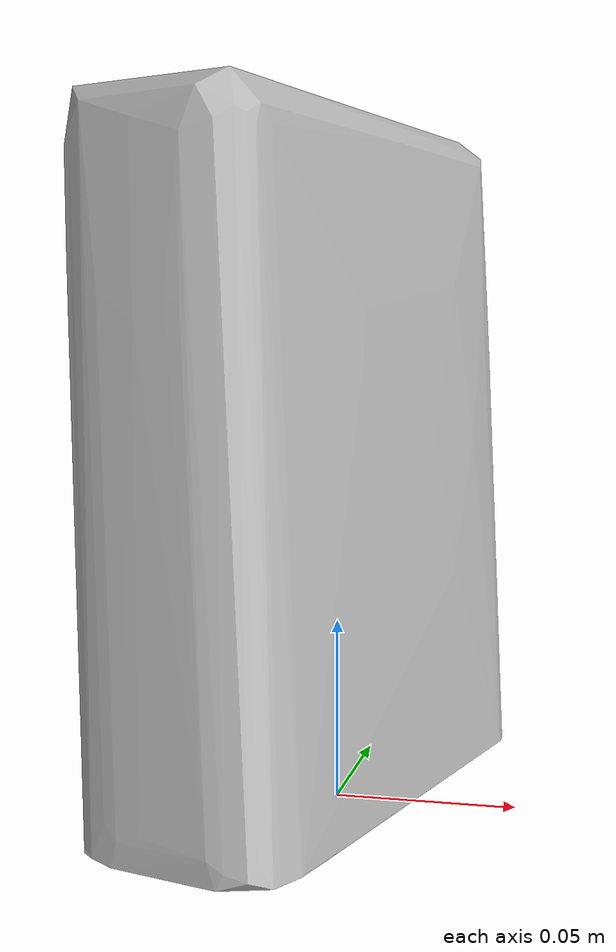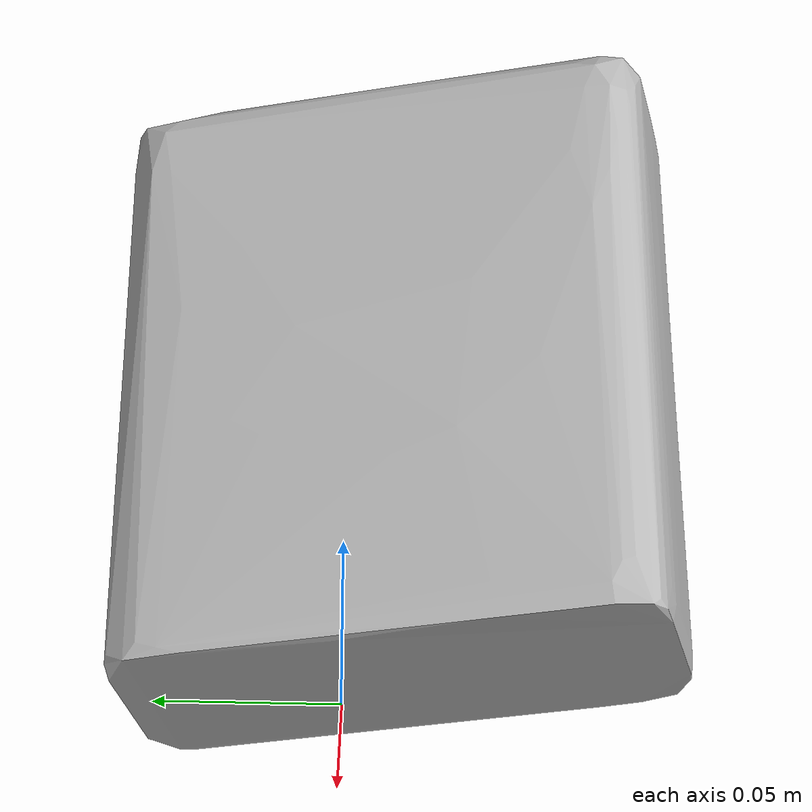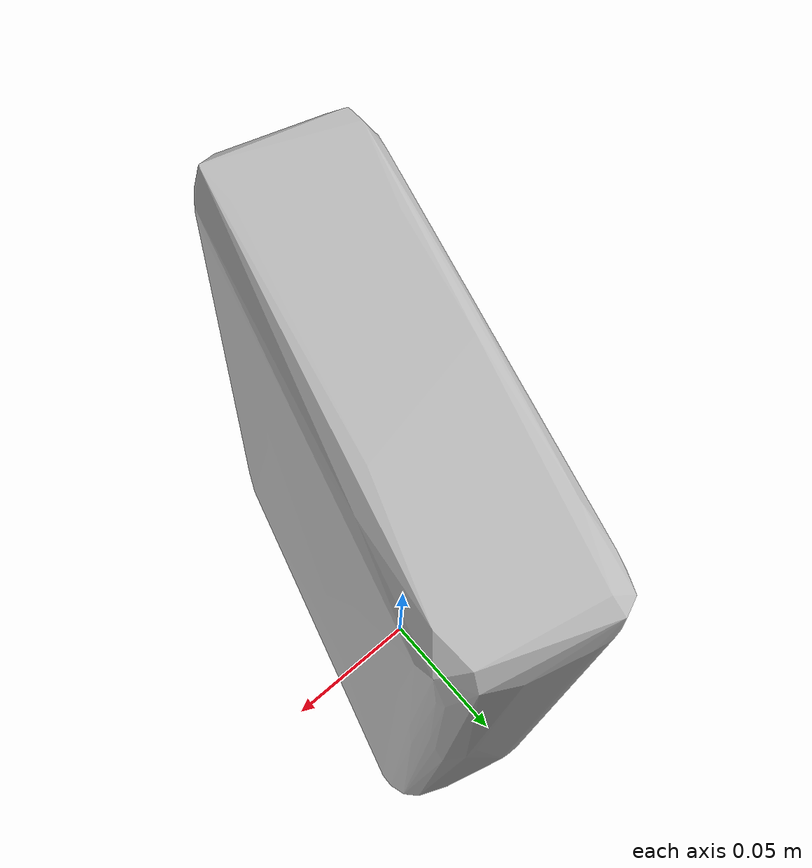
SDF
<?xml version='1.0'?>
<sdf version="1.4">
  <model name="spongebob_squarepants_fruit_snaks">
    <static>false</static>
    <link name="link">
      <inertial>
        <pose>-0.004377179149907652 -0.0147204365152445 0.09264021231525225 3.1397575661854265 0.02954721257352075 2.853600819471062</pose>
        <mass>0.08186604713360083</mass>
        <inertia>
          <ixx>0.0006947281610153412</ixx>
          <ixy>4.690376930139573e-20</ixy>
          <ixz>-1.9296973369823654e-21</ixz>
          <iyy>0.0004417261448531862</iyy>
          <iyz>3.0391699429157804e-21</iyz>
          <izz>0.00032943681878434345</izz>
        </inertia>
      </inertial>
      <collision name="collision">
        <geometry>
          <mesh>
            <!-- Use a downsampled mesh for collisions -->
            <uri>model:///spongebob_squarepants_fruit_snaks/spongebob_squarepants_fruit_snaks_250_collision.obj</uri>
	        </mesh>
        </geometry>
        <surface>
      </surface>
      </collision>
      <visual name="visual">
        <geometry>
          <mesh>
            <uri>model:///spongebob_squarepants_fruit_snaks/optimized_tsdf_texture_mapped_mesh.obj</uri>
	        </mesh>
        </geometry>
        <material>
          <script>
            <uri>model:///spongebob_squarepants_fruit_snaks/spongebob_squarepants_fruit_snaks.material</uri>
            <name>spongebob_squarepants_fruit_snaks</name>
          </script>
        </material>
      </visual>
    </link>
  </model>
</sdf>
